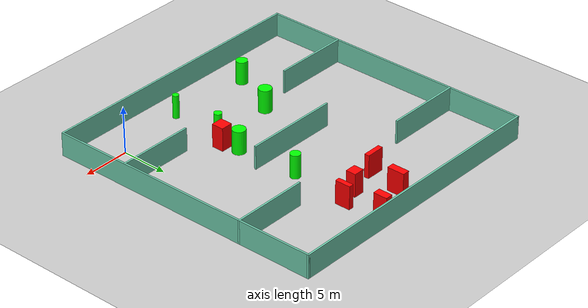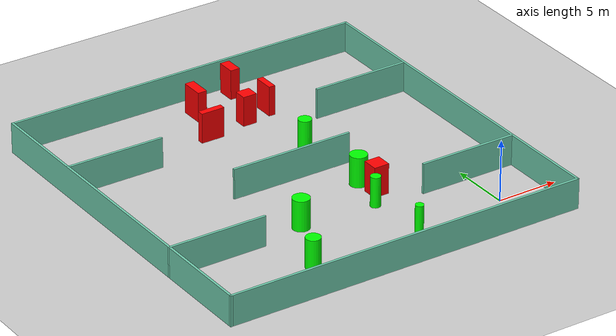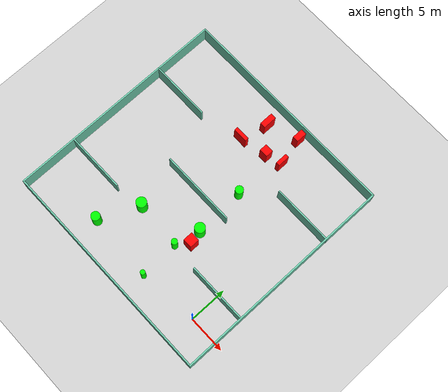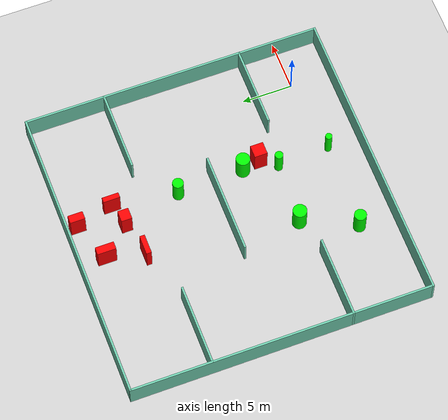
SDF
<sdf version="1.7">
 <world name="default">
  <light name="sun" type="directional">
   <pose>0 0 10 0 -0 0</pose>
   <diffuse>0.8 0.8 0.8 1</diffuse>
   <specular>0.2 0.2 0.2 1</specular>
   <attenuation>
    <range>1000</range>
    <constant>0.9</constant>
    <linear>0.01</linear>
    <quadratic>0.001</quadratic>
   </attenuation>
   <direction>-0.5 0.1 -0.9</direction>
   <spot><inner_angle>0</inner_angle><outer_angle>0</outer_angle><falloff>0</falloff></spot>
  </light>
  <model name="ground_plane">
   <static>1</static>
   <link name="link">
    <collision name="collision">
     <geometry><plane><normal>0 0 1</normal><size>100 100</size></plane></geometry>
     <surface>
      <contact><collide_bitmask>65535</collide_bitmask></contact>
      <friction><ode><mu>100</mu><mu2>50</mu2></ode></friction>
     </surface>
    </collision>
    <visual name="visual">
     <cast_shadows>0</cast_shadows>
     <geometry><plane><normal>0 0 1</normal><size>100 100</size></plane></geometry>
     <material>
      <script><uri>file://media/materials/scripts/gazebo.material</uri><name>Gazebo/Grey</name></script>
     </material>
    </visual>
   </link>
  </model>
  <gravity>0 0 -9.8</gravity>
  <magnetic_field>6e-06 2.3e-05 -4.2e-05</magnetic_field>
  <atmosphere type="adiabatic"/>
  <physics type="ode">
   <max_step_size>0.001</max_step_size>
   <real_time_factor>1</real_time_factor>
   <real_time_update_rate>1000</real_time_update_rate>
  </physics>
  <scene><ambient>0.4 0.4 0.4 1</ambient><background>0.7 0.7 0.7 1</background><shadows>1</shadows></scene>
  <spherical_coordinates>
   <surface_model>EARTH_WGS84</surface_model>
   <latitude_deg>0</latitude_deg>
   <longitude_deg>0</longitude_deg>
   <elevation>0</elevation>
   <heading_deg>0</heading_deg>
  </spherical_coordinates>
  <model name="my_base_walls">
   <link name="Wall_10">
    <collision name="Wall_10_Collision">
     <geometry><box><size>8.2 0.2 2.5</size></box></geometry>
     <pose>0 0 1.25 0 -0 0</pose>
    </collision>
    <visual name="Wall_10_Visual">
     <pose>0 0 1.25 0 -0 0</pose>
     <geometry><box><size>8.2 0.2 2.5</size></box></geometry>
     <material>
      <script><uri>file://media/materials/scripts/gazebo.material</uri><name>Gazebo/Grey</name></script>
      <ambient>0.435294 0.796078 0.67451 1</ambient>
     </material>
     <meta><layer>0</layer></meta>
    </visual>
    <pose>-11 -7 0 0 -0 0</pose>
   </link>
   <link name="Wall_12">
    <collision name="Wall_12_Collision">
     <geometry><box><size>8.2 0.2 2.5</size></box></geometry>
     <pose>0 0 1.25 0 -0 0</pose>
    </collision>
    <visual name="Wall_12_Visual">
     <pose>0 0 1.25 0 -0 0</pose>
     <geometry><box><size>8.2 0.2 2.5</size></box></geometry>
     <material>
      <script><uri>file://media/materials/scripts/gazebo.material</uri><name>Gazebo/Grey</name></script>
      <ambient>0.435294 0.796078 0.67451 1</ambient>
     </material>
     <meta><layer>0</layer></meta>
    </visual>
    <pose>-11 7 0 0 -0 0</pose>
   </link>
   <link name="Wall_14">
    <collision name="Wall_14_Collision">
     <geometry><box><size>8.2 0.2 2.5</size></box></geometry>
     <pose>0 0 1.25 0 -0 0</pose>
    </collision>
    <visual name="Wall_14_Visual">
     <pose>0 0 1.25 0 -0 0</pose>
     <geometry><box><size>8.2 0.2 2.5</size></box></geometry>
     <material>
      <script><uri>file://media/materials/scripts/gazebo.material</uri><name>Gazebo/Grey</name></script>
      <ambient>0.435294 0.796078 0.67451 1</ambient>
     </material>
     <meta><layer>0</layer></meta>
    </visual>
    <pose>11 7 0 0 -0 3.14159</pose>
   </link>
   <link name="Wall_16">
    <collision name="Wall_16_Collision">
     <geometry><box><size>10.2 0.2 2.5</size></box></geometry>
     <pose>0 0 1.25 0 -0 0</pose>
    </collision>
    <visual name="Wall_16_Visual">
     <pose>0 0 1.25 0 -0 0</pose>
     <geometry><box><size>10.2 0.2 2.5</size></box></geometry>
     <material>
      <script><uri>file://media/materials/scripts/gazebo.material</uri><name>Gazebo/Grey</name></script>
      <ambient>0.435294 0.796078 0.67451 1</ambient>
     </material>
     <meta><layer>0</layer></meta>
    </visual>
    <pose>0 0 0 0 -0 3.14159</pose>
   </link>
   <link name="Wall_2">
    <collision name="Wall_2_Collision">
     <geometry><box><size>30.2 0.2 2.5</size></box></geometry>
     <pose>0 0 1.25 0 -0 0</pose>
    </collision>
    <visual name="Wall_2_Visual">
     <pose>0 0 1.25 0 -0 0</pose>
     <geometry><box><size>30.2 0.2 2.5</size></box></geometry>
     <material>
      <script><uri>file://media/materials/scripts/gazebo.material</uri><name>Gazebo/Grey</name></script>
      <ambient>0.435294 0.796078 0.67451 1</ambient>
     </material>
     <meta><layer>0</layer></meta>
    </visual>
    <pose>0 -15 0 0 -0 3.14159</pose>
   </link>
   <link name="Wall_3">
    <collision name="Wall_3_Collision">
     <geometry><box><size>30.2 0.2 2.5</size></box></geometry>
     <pose>0 0 1.25 0 -0 0</pose>
    </collision>
    <visual name="Wall_3_Visual">
     <pose>0 0 1.25 0 -0 0</pose>
     <geometry><box><size>30.2 0.2 2.5</size></box></geometry>
     <material>
      <script><uri>file://media/materials/scripts/gazebo.material</uri><name>Gazebo/Grey</name></script>
      <ambient>0.435294 0.796078 0.67451 1</ambient>
     </material>
     <meta><layer>0</layer></meta>
    </visual>
    <pose>-15 0 0 0 -0 1.5708</pose>
   </link>
   <link name="Wall_4">
    <collision name="Wall_4_Collision">
     <geometry><box><size>30.2 0.2 2.5</size></box></geometry>
     <pose>0 0 1.25 0 -0 0</pose>
    </collision>
    <visual name="Wall_4_Visual">
     <pose>0 0 1.25 0 -0 0</pose>
     <geometry><box><size>30.2 0.2 2.5</size></box></geometry>
     <material>
      <script><uri>file://media/materials/scripts/gazebo.material</uri><name>Gazebo/Grey</name></script>
      <ambient>0.435294 0.796078 0.67451 1</ambient>
     </material>
     <meta><layer>0</layer></meta>
    </visual>
    <pose>0 15 0 0 -0 0</pose>
   </link>
   <link name="Wall_6">
    <collision name="Wall_6_Collision">
     <geometry><box><size>30.2 0.2 2.5</size></box></geometry>
     <pose>0 0 1.25 0 -0 0</pose>
    </collision>
    <visual name="Wall_6_Visual">
     <pose>0 0 1.25 0 -0 0</pose>
     <geometry><box><size>30.2 0.2 2.5</size></box></geometry>
     <material>
      <script><uri>file://media/materials/scripts/gazebo.material</uri><name>Gazebo/Grey</name></script>
      <ambient>0.435294 0.796078 0.67451 1</ambient>
     </material>
     <meta><layer>0</layer></meta>
    </visual>
    <pose>15 0 0 0 -0 1.5708</pose>
   </link>
   <link name="Wall_8">
    <collision name="Wall_8_Collision">
     <geometry><box><size>8.2 0.2 2.5</size></box></geometry>
     <pose>0 0 1.25 0 -0 0</pose>
    </collision>
    <visual name="Wall_8_Visual">
     <pose>0 0 1.25 0 -0 0</pose>
     <geometry><box><size>8.2 0.2 2.5</size></box></geometry>
     <material>
      <script><uri>file://media/materials/scripts/gazebo.material</uri><name>Gazebo/Grey</name></script>
      <ambient>0.435294 0.796078 0.67451 1</ambient>
     </material>
     <meta><layer>0</layer></meta>
    </visual>
    <pose>11 -7 0 0 -0 3.14159</pose>
   </link>
   <static>1</static>
   <pose>-11 11 0 0 -0 0</pose>
  </model>
  <model name="cylinder1">
   <static>1</static>
   <link name="link">
    <inertial>
     <mass>1</mass>
     <inertia><ixx>0.5</ixx><ixy>0</ixy><ixz>0</ixz><iyy>0.5</iyy><iyz>0</iyz><izz>1</izz></inertia>
    </inertial>
    <collision name="collision">
     <geometry><cylinder><radius>0.5434443499531549</radius><length>2.5</length></cylinder></geometry>
    </collision>
    <visual name="visual">
     <geometry><cylinder><radius>0.5434443499531549</radius><length>2.5</length></cylinder></geometry>
     <material>
      <ambient>0 1 0 1</ambient>
      <diffuse>0 1 0 1</diffuse>
      <specular>0.1 0.1 0.1 1</specular>
      <emissive>0 0 0 0</emissive>
     </material>
    </visual>
   </link>
   <pose>-7.459180869967252 14.559385195811764 1.25 0 0 0</pose>
  </model>
  <model name="cylinder2">
   <static>1</static>
   <link name="link">
    <inertial>
     <mass>1</mass>
     <inertia><ixx>0.5</ixx><ixy>0</ixy><ixz>0</ixz><iyy>0.5</iyy><iyz>0</iyz><izz>1</izz></inertia>
    </inertial>
    <collision name="collision">
     <geometry><cylinder><radius>0.6967776783447814</radius><length>2.5</length></cylinder></geometry>
    </collision>
    <visual name="visual">
     <geometry><cylinder><radius>0.6967776783447814</radius><length>2.5</length></cylinder></geometry>
     <material>
      <ambient>0 1 0 1</ambient>
      <diffuse>0 1 0 1</diffuse>
      <specular>0.1 0.1 0.1 1</specular>
      <emissive>0 0 0 0</emissive>
     </material>
    </visual>
   </link>
   <pose>-14.325061304770326 4.76063829156266 1.25 0 0 0</pose>
  </model>
  <model name="cylinder3">
   <static>1</static>
   <link name="link">
    <inertial>
     <mass>1</mass>
     <inertia><ixx>0.5</ixx><ixy>0</ixy><ixz>0</ixz><iyy>0.5</iyy><iyz>0</iyz><izz>1</izz></inertia>
    </inertial>
    <collision name="collision">
     <geometry><cylinder><radius>0.6961684199219604</radius><length>2.5</length></cylinder></geometry>
    </collision>
    <visual name="visual">
     <geometry><cylinder><radius>0.6961684199219604</radius><length>2.5</length></cylinder></geometry>
     <material>
      <ambient>0 1 0 1</ambient>
      <diffuse>0 1 0 1</diffuse>
      <specular>0.1 0.1 0.1 1</specular>
      <emissive>0 0 0 0</emissive>
     </material>
    </visual>
   </link>
   <pose>-7.204314035595495 7.830389325085097 1.25 0 0 0</pose>
  </model>
  <model name="cylinder4">
   <static>1</static>
   <link name="link">
    <inertial>
     <mass>1</mass>
     <inertia><ixx>0.5</ixx><ixy>0</ixy><ixz>0</ixz><iyy>0.5</iyy><iyz>0</iyz><izz>1</izz></inertia>
    </inertial>
    <collision name="collision">
     <geometry><cylinder><radius>0.41039122287407737</radius><length>2.5</length></cylinder></geometry>
    </collision>
    <visual name="visual">
     <geometry><cylinder><radius>0.41039122287407737</radius><length>2.5</length></cylinder></geometry>
     <material>
      <ambient>0 1 0 1</ambient>
      <diffuse>0 1 0 1</diffuse>
      <specular>0.1 0.1 0.1 1</specular>
      <emissive>0 0 0 0</emissive>
     </material>
    </visual>
   </link>
   <pose>-8.012433301901865 4.428383788786347 1.25 0 0 0</pose>
  </model>
  <model name="cylinder5">
   <static>1</static>
   <link name="link">
    <inertial>
     <mass>1</mass>
     <inertia><ixx>0.5</ixx><ixy>0</ixy><ixz>0</ixz><iyy>0.5</iyy><iyz>0</iyz><izz>1</izz></inertia>
    </inertial>
    <collision name="collision">
     <geometry><cylinder><radius>0.33550009218956156</radius><length>2.5</length></cylinder></geometry>
    </collision>
    <visual name="visual">
     <geometry><cylinder><radius>0.33550009218956156</radius><length>2.5</length></cylinder></geometry>
     <material>
      <ambient>0 1 0 1</ambient>
      <diffuse>0 1 0 1</diffuse>
      <specular>0.1 0.1 0.1 1</specular>
      <emissive>0 0 0 0</emissive>
     </material>
    </visual>
   </link>
   <pose>-7.795911131821995 -0.8069312225114862 1.25 0 0 0</pose>
  </model>
  <model name="cylinder6">
   <static>1</static>
   <link name="link">
    <inertial>
     <mass>1</mass>
     <inertia><ixx>0.5</ixx><ixy>0</ixy><ixz>0</ixz><iyy>0.5</iyy><iyz>0</iyz><izz>1</izz></inertia>
    </inertial>
    <collision name="collision">
     <geometry><cylinder><radius>0.6015974310894052</radius><length>2.5</length></cylinder></geometry>
    </collision>
    <visual name="visual">
     <geometry><cylinder><radius>0.6015974310894052</radius><length>2.5</length></cylinder></geometry>
     <material>
      <ambient>0 1 0 1</ambient>
      <diffuse>0 1 0 1</diffuse>
      <specular>0.1 0.1 0.1 1</specular>
      <emissive>0 0 0 0</emissive>
     </material>
    </visual>
   </link>
   <pose>-16.757637935328614 -0.445943784146134 1.25 0 0 0</pose>
  </model>
  <model name="box1">
   <static>1</static>
   <link name="link">
    <inertial>
     <mass>1</mass>
     <inertia><ixx>0.083</ixx><ixy>0</ixy><ixz>0</ixz><iyy>0.083</iyy><iyz>0</iyz><izz>0.083</izz></inertia>
    </inertial>
    <collision name="collision">
     <geometry><box><size>0.7722931760300134 1.859421529379138 2.5</size></box></geometry>
    </collision>
    <visual name="visual">
     <geometry><box><size>0.7722931760300134 1.859421529379138 2.5</size></box></geometry>
     <material>
      <ambient>1 0 0 1</ambient>
      <diffuse>1 0 0 1</diffuse>
      <specular>0.1 0.1 0.1 1</specular>
      <emissive>0 0 0 0</emissive>
     </material>
    </visual>
    <sensor name="my_contact" type="contact">
     <contact><collision>box_collision</collision><topic>__default_topic__</topic></contact>
    </sensor>
   </link>
   <pose>-11.557067142293747 23.314745391076475 1.25 0 0 0</pose>
  </model>
  <model name="box2">
   <static>1</static>
   <link name="link">
    <inertial>
     <mass>1</mass>
     <inertia><ixx>0.083</ixx><ixy>0</ixy><ixz>0</ixz><iyy>0.083</iyy><iyz>0</iyz><izz>0.083</izz></inertia>
    </inertial>
    <collision name="collision">
     <geometry><box><size>1.264856790792125 1.2939779279877657 2.5</size></box></geometry>
    </collision>
    <visual name="visual">
     <geometry><box><size>1.264856790792125 1.2939779279877657 2.5</size></box></geometry>
     <material>
      <ambient>1 0 0 1</ambient>
      <diffuse>1 0 0 1</diffuse>
      <specular>0.1 0.1 0.1 1</specular>
      <emissive>0 0 0 0</emissive>
     </material>
    </visual>
    <sensor name="my_contact" type="contact">
     <contact><collision>box_collision</collision><topic>__default_topic__</topic></contact>
    </sensor>
   </link>
   <pose>-6.804862433042601 6.043816963194667 1.25 0 0 0</pose>
  </model>
  <model name="box3">
   <static>1</static>
   <link name="link">
    <inertial>
     <mass>1</mass>
     <inertia><ixx>0.083</ixx><ixy>0</ixy><ixz>0</ixz><iyy>0.083</iyy><iyz>0</iyz><izz>0.083</izz></inertia>
    </inertial>
    <collision name="collision">
     <geometry><box><size>0.8032557087423156 1.4827870023417646 2.5</size></box></geometry>
    </collision>
    <visual name="visual">
     <geometry><box><size>0.8032557087423156 1.4827870023417646 2.5</size></box></geometry>
     <material>
      <ambient>1 0 0 1</ambient>
      <diffuse>1 0 0 1</diffuse>
      <specular>0.1 0.1 0.1 1</specular>
      <emissive>0 0 0 0</emissive>
     </material>
    </visual>
    <sensor name="my_contact" type="contact">
     <contact><collision>box_collision</collision><topic>__default_topic__</topic></contact>
    </sensor>
   </link>
   <pose>-7.511943196444276 24.824486170048353 1.25 0 0 0</pose>
  </model>
  <model name="box4">
   <static>1</static>
   <link name="link">
    <inertial>
     <mass>1</mass>
     <inertia><ixx>0.083</ixx><ixy>0</ixy><ixz>0</ixz><iyy>0.083</iyy><iyz>0</iyz><izz>0.083</izz></inertia>
    </inertial>
    <collision name="collision">
     <geometry><box><size>0.5210740023705072 1.6525770084909097 2.5</size></box></geometry>
    </collision>
    <visual name="visual">
     <geometry><box><size>0.5210740023705072 1.6525770084909097 2.5</size></box></geometry>
     <material>
      <ambient>1 0 0 1</ambient>
      <diffuse>1 0 0 1</diffuse>
      <specular>0.1 0.1 0.1 1</specular>
      <emissive>0 0 0 0</emissive>
     </material>
    </visual>
    <sensor name="my_contact" type="contact">
     <contact><collision>box_collision</collision><topic>__default_topic__</topic></contact>
    </sensor>
   </link>
   <pose>-6.665644554771935 21.062539116472852 1.25 0 0 0</pose>
  </model>
  <model name="box5">
   <static>1</static>
   <link name="link">
    <inertial>
     <mass>1</mass>
     <inertia><ixx>0.083</ixx><ixy>0</ixy><ixz>0</ixz><iyy>0.083</iyy><iyz>0</iyz><izz>0.083</izz></inertia>
    </inertial>
    <collision name="collision">
     <geometry><box><size>1.9687972470517643 0.5129039214745607 2.5</size></box></geometry>
    </collision>
    <visual name="visual">
     <geometry><box><size>1.9687972470517643 0.5129039214745607 2.5</size></box></geometry>
     <material>
      <ambient>1 0 0 1</ambient>
      <diffuse>1 0 0 1</diffuse>
      <specular>0.1 0.1 0.1 1</specular>
      <emissive>0 0 0 0</emissive>
     </material>
    </visual>
    <sensor name="my_contact" type="contact">
     <contact><collision>box_collision</collision><topic>__default_topic__</topic></contact>
    </sensor>
   </link>
   <pose>-12.5032842661187 19.666387499593498 1.25 0 0 0</pose>
  </model>
  <model name="box6">
   <static>1</static>
   <link name="link">
    <inertial>
     <mass>1</mass>
     <inertia><ixx>0.083</ixx><ixy>0</ixy><ixz>0</ixz><iyy>0.083</iyy><iyz>0</iyz><izz>0.083</izz></inertia>
    </inertial>
    <collision name="collision">
     <geometry><box><size>1.1556239416462513 1.0671760243189203 2.5</size></box></geometry>
    </collision>
    <visual name="visual">
     <geometry><box><size>1.1556239416462513 1.0671760243189203 2.5</size></box></geometry>
     <material>
      <ambient>1 0 0 1</ambient>
      <diffuse>1 0 0 1</diffuse>
      <specular>0.1 0.1 0.1 1</specular>
      <emissive>0 0 0 0</emissive>
     </material>
    </visual>
    <sensor name="my_contact" type="contact">
     <contact><collision>box_collision</collision><topic>__default_topic__</topic></contact>
    </sensor>
   </link>
   <pose>-8.868170023286956 20.445619071171183 1.25 0 0 0</pose>
  </model>
 </world>
</sdf>
